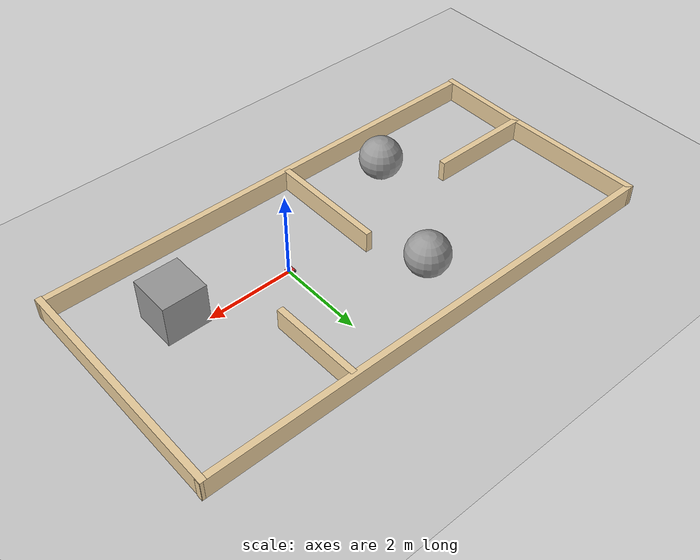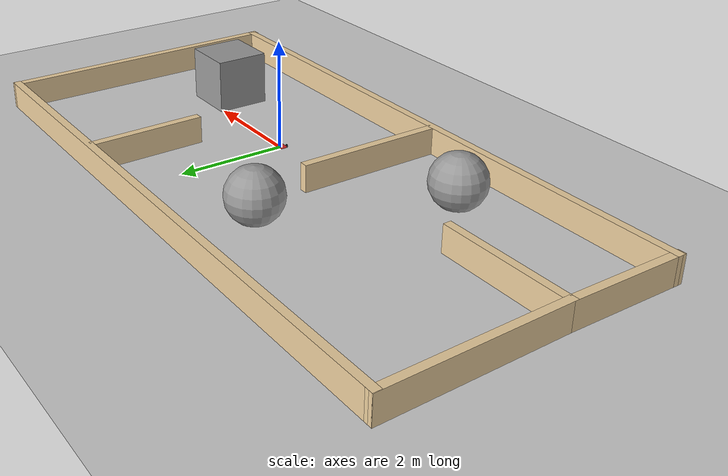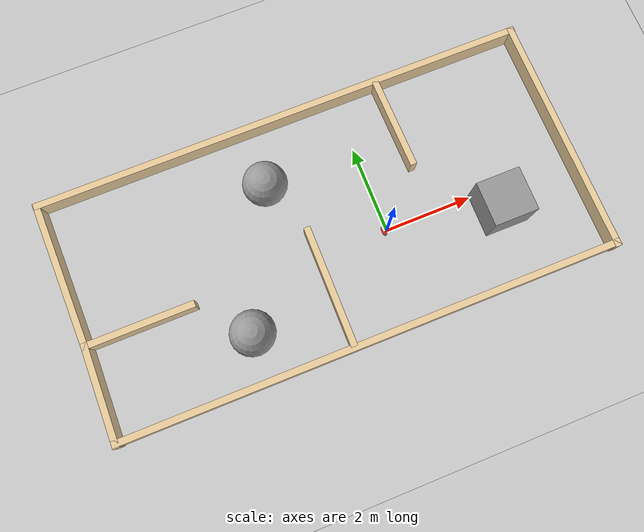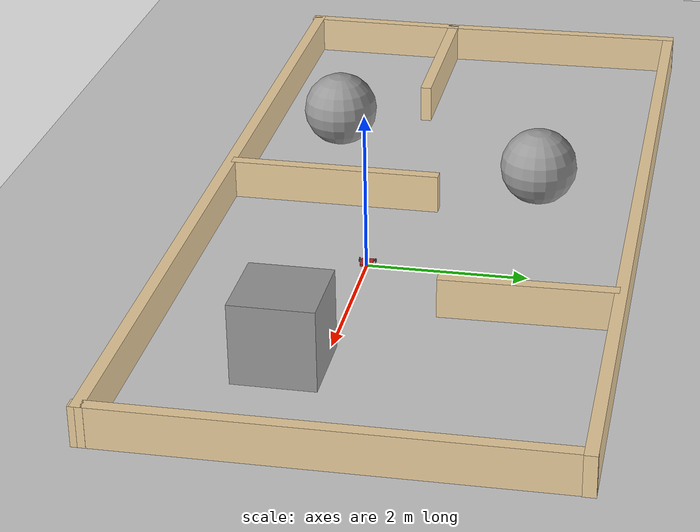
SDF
<sdf version="1.7">
 <world name="default">
  <light name="sun" type="directional">
   <pose>0 0 10 0 -0 0</pose>
   <diffuse>0.8 0.8 0.8 1</diffuse>
   <specular>0.2 0.2 0.2 1</specular>
   <attenuation>
    <range>1000</range>
    <constant>0.9</constant>
    <linear>0.01</linear>
    <quadratic>0.001</quadratic>
   </attenuation>
   <direction>-0.5 0.1 -0.9</direction>
   <spot><inner_angle>0</inner_angle><outer_angle>0</outer_angle><falloff>0</falloff></spot>
  </light>
  <model name="ground_plane">
   <static>1</static>
   <link name="link">
    <collision name="collision">
     <geometry><plane><normal>0 0 1</normal><size>100 100</size></plane></geometry>
     <surface>
      <contact><collide_bitmask>65535</collide_bitmask></contact>
      <friction><ode><mu>100</mu><mu2>50</mu2></ode></friction>
     </surface>
    </collision>
    <visual name="visual">
     <cast_shadows>0</cast_shadows>
     <geometry><plane><normal>0 0 1</normal><size>100 100</size></plane></geometry>
     <material>
      <script><uri>file://media/materials/scripts/gazebo.material</uri><name>Gazebo/Grey</name></script>
     </material>
    </visual>
   </link>
  </model>
  <gravity>0 0 -9.8</gravity>
  <magnetic_field>6e-06 2.3e-05 -4.2e-05</magnetic_field>
  <atmosphere type="adiabatic"/>
  <physics type="ode">
   <max_step_size>0.001</max_step_size>
   <real_time_factor>1</real_time_factor>
   <real_time_update_rate>1000</real_time_update_rate>
  </physics>
  <scene><ambient>0.4 0.4 0.4 1</ambient><background>0.7 0.7 0.7 1</background><shadows>1</shadows></scene>
  <spherical_coordinates>
   <surface_model>EARTH_WGS84</surface_model>
   <latitude_deg>0</latitude_deg>
   <longitude_deg>0</longitude_deg>
   <elevation>0</elevation>
   <heading_deg>0</heading_deg>
  </spherical_coordinates>
  <model name="world_4">
   <pose>-1.26957 0.52011 0 0 -0 0</pose>
   <link name="Wall_0">
    <collision name="Wall_0_Collision">
     <geometry><box><size>11.5 0.15 0.5</size></box></geometry>
     <pose>0 0 0.25 0 -0 0</pose>
    </collision>
    <visual name="Wall_0_Visual">
     <pose>0 0 0.25 0 -0 0</pose>
     <geometry><box><size>11.5 0.15 0.5</size></box></geometry>
     <material>
      <script><uri>file://media/materials/scripts/gazebo.material</uri><name>Gazebo/Grey</name></script>
      <ambient>0.921569 0.807843 0.615686 1</ambient>
     </material>
     <meta><layer>0</layer></meta>
    </visual>
    <pose>-0.009596 2.69462 0 0 -0 -0.000881</pose>
   </link>
   <link name="Wall_1">
    <collision name="Wall_1_Collision">
     <geometry><box><size>5.54008 0.15 0.5</size></box></geometry>
     <pose>0 0 0.25 0 -0 0</pose>
    </collision>
    <visual name="Wall_1_Visual">
     <pose>0 0 0.25 0 -0 0</pose>
     <geometry><box><size>5.54008 0.15 0.5</size></box></geometry>
     <material>
      <script><uri>file://media/materials/scripts/gazebo.material</uri><name>Gazebo/Grey</name></script>
      <ambient>0.921569 0.807843 0.615686 1</ambient>
     </material>
     <meta><layer>0</layer></meta>
    </visual>
    <pose>5.6754 -0.005379 0 0 -0 -1.56337</pose>
   </link>
   <link name="Wall_13">
    <collision name="Wall_13_Collision">
     <geometry><box><size>2.75 0.15 0.5</size></box></geometry>
     <pose>0 0 0.25 0 -0 0</pose>
    </collision>
    <visual name="Wall_13_Visual">
     <pose>0 0 0.25 0 -0 0</pose>
     <geometry><box><size>2.75 0.15 0.5</size></box></geometry>
     <material>
      <script><uri>file://media/materials/scripts/gazebo.material</uri><name>Gazebo/Grey</name></script>
      <ambient>0.921569 0.807843 0.615686 1</ambient>
     </material>
     <meta><layer>0</layer></meta>
    </visual>
    <pose>-0.394596 -1.28038 0 0 -0 1.5708</pose>
   </link>
   <link name="Wall_2">
    <collision name="Wall_2_Collision">
     <geometry><box><size>11.5 0.15 0.5</size></box></geometry>
     <pose>0 0 0.25 0 -0 0</pose>
    </collision>
    <visual name="Wall_2_Visual">
     <pose>0 0 0.25 0 -0 0</pose>
     <geometry><box><size>11.5 0.15 0.5</size></box></geometry>
     <material>
      <script><uri>file://media/materials/scripts/gazebo.material</uri><name>Gazebo/Grey</name></script>
      <ambient>0.921569 0.807843 0.615686 1</ambient>
     </material>
     <meta><layer>0</layer></meta>
    </visual>
    <pose>0.020404 -2.67538 0 0 -0 3.14071</pose>
   </link>
   <link name="Wall_3">
    <collision name="Wall_3_Collision">
     <geometry><box><size>2.27002 0.15 0.5</size></box></geometry>
     <pose>0 0 0.25 0 -0 0</pose>
    </collision>
    <visual name="Wall_3_Visual">
     <pose>0 0 0.25 0 -0 0</pose>
     <geometry><box><size>2.27002 0.15 0.5</size></box></geometry>
     <material>
      <script><uri>file://media/materials/scripts/gazebo.material</uri><name>Gazebo/Grey</name></script>
      <ambient>0.921569 0.807843 0.615686 1</ambient>
     </material>
     <meta><layer>0</layer></meta>
    </visual>
    <pose>-5.6446 -1.63038 0 0 -0 1.56136</pose>
   </link>
   <link name="Wall_4">
    <collision name="Wall_4_Collision">
     <geometry><box><size>2.52 0.15 0.5</size></box></geometry>
     <pose>0 0 0.25 0 -0 0</pose>
    </collision>
    <visual name="Wall_4_Visual">
     <pose>0 0 0.25 0 -0 0</pose>
     <geometry><box><size>2.52 0.15 0.5</size></box></geometry>
     <material>
      <script><uri>file://media/materials/scripts/gazebo.material</uri><name>Gazebo/Grey</name></script>
      <ambient>0.921569 0.807843 0.615686 1</ambient>
     </material>
     <meta><layer>0</layer></meta>
    </visual>
    <pose>-4.4496 -0.570379 0 0 -0 0</pose>
   </link>
   <link name="Wall_6">
    <collision name="Wall_6_Collision">
     <geometry><box><size>3.42038 0.15 0.5</size></box></geometry>
     <pose>0 0 0.25 0 -0 0</pose>
    </collision>
    <visual name="Wall_6_Visual">
     <pose>0 0 0.25 0 -0 0</pose>
     <geometry><box><size>3.42038 0.15 0.5</size></box></geometry>
     <material>
      <script><uri>file://media/materials/scripts/gazebo.material</uri><name>Gazebo/Grey</name></script>
      <ambient>0.921569 0.807843 0.615686 1</ambient>
     </material>
     <meta><layer>0</layer></meta>
    </visual>
    <pose>-5.6646 1.06462 0 0 -0 -1.55245</pose>
   </link>
   <link name="Wall_8">
    <collision name="Wall_8_Collision">
     <geometry><box><size>2.1304 0.15 0.5</size></box></geometry>
     <pose>0 0 0.25 0 -0 0</pose>
    </collision>
    <visual name="Wall_8_Visual">
     <pose>0 0 0.25 0 -0 0</pose>
     <geometry><box><size>2.1304 0.15 0.5</size></box></geometry>
     <material>
      <script><uri>file://media/materials/scripts/gazebo.material</uri><name>Gazebo/Grey</name></script>
      <ambient>0.921569 0.807843 0.615686 1</ambient>
     </material>
     <meta><layer>0</layer></meta>
    </visual>
    <pose>2.2954 1.60962 0 0 -0 -1.5506</pose>
   </link>
   <static>1</static>
  </model>
  <model name="unit_box">
   <pose>2.49492 -0.439017 0.499995 0 1e-05 0</pose>
   <link name="link">
    <inertial>
     <mass>1</mass>
     <inertia>
      <ixx>0.166667</ixx>
      <ixy>0</ixy>
      <ixz>0</ixz>
      <iyy>0.166667</iyy>
      <iyz>0</iyz>
      <izz>0.166667</izz>
     </inertia>
    </inertial>
    <collision name="collision"><geometry><box><size>1 1 1</size></box></geometry></collision>
    <visual name="visual">
     <geometry><box><size>1 1 1</size></box></geometry>
     <material>
      <script><name>Gazebo/Grey</name><uri>file://media/materials/scripts/gazebo.material</uri></script>
     </material>
    </visual>
   </link>
  </model>
  <model name="unit_sphere">
   <pose>-3.54273 -1.08671 0.5 0 -0 0</pose>
   <link name="link">
    <inertial>
     <mass>1</mass>
     <inertia><ixx>0.1</ixx><ixy>0</ixy><ixz>0</ixz><iyy>0.1</iyy><iyz>0</iyz><izz>0.1</izz></inertia>
    </inertial>
    <collision name="collision"><geometry><sphere><radius>0.5</radius></sphere></geometry></collision>
    <visual name="visual">
     <geometry><sphere><radius>0.5</radius></sphere></geometry>
     <material>
      <script><name>Gazebo/Grey</name><uri>file://media/materials/scripts/gazebo.material</uri></script>
     </material>
    </visual>
   </link>
  </model>
  <model name="rmp01_bot">
   <link name="base_link">
    <inertial>
     <pose>0.010759 -0 0.042322 0 -0 0</pose>
     <mass>1.2621</mass>
     <inertia>
      <ixx>0.00214581</ixx>
      <ixy>8.33378e-21</ixy>
      <ixz>0.000329519</ixz>
      <iyy>0.00378525</iyy>
      <iyz>-3.97237e-21</iyz>
      <izz>0.00468344</izz>
     </inertia>
    </inertial>
    <collision name="base_link_collision">
     <geometry>
      <mesh>
       <scale>0.001 0.001 0.001</scale>
       <uri>/home/kanish/catkin_ws/src/rmp01_bot_description/meshes/base_link.stl</uri>
      </mesh>
     </geometry>
     <surface><friction><ode><mu>0.2</mu><mu2>0.2</mu2></ode></friction></surface>
    </collision>
    <collision name="base_link_fixed_joint_lump__caster_1_collision_1">
     <geometry>
      <mesh>
       <scale>0.001 0.001 0.001</scale>
       <uri>/home/kanish/catkin_ws/src/rmp01_bot_description/meshes/caster_1.stl</uri>
      </mesh>
     </geometry>
     <surface><friction><ode><mu>0.2</mu><mu2>0.2</mu2></ode></friction></surface>
    </collision>
    <collision name="base_link_fixed_joint_lump__lidar_1_collision_2">
     <geometry>
      <mesh>
       <scale>0.001 0.001 0.001</scale>
       <uri>/home/kanish/catkin_ws/src/rmp01_bot_description/meshes/lidar_1.stl</uri>
      </mesh>
     </geometry>
     <surface><friction><ode><mu>0.2</mu><mu2>0.2</mu2></ode></friction></surface>
    </collision>
    <visual name="base_link_visual">
     <geometry>
      <mesh>
       <scale>0.001 0.001 0.001</scale>
       <uri>/home/kanish/catkin_ws/src/rmp01_bot_description/meshes/base_link.stl</uri>
      </mesh>
     </geometry>
     <material>
      <script><name>Gazebo/Red</name><uri>file://media/materials/scripts/gazebo.material</uri></script>
     </material>
    </visual>
    <visual name="base_link_fixed_joint_lump__caster_1_visual_1">
     <geometry>
      <mesh>
       <scale>0.001 0.001 0.001</scale>
       <uri>/home/kanish/catkin_ws/src/rmp01_bot_description/meshes/caster_1.stl</uri>
      </mesh>
     </geometry>
     <material>
      <script><name>Gazebo/Red</name><uri>file://media/materials/scripts/gazebo.material</uri></script>
     </material>
    </visual>
    <visual name="base_link_fixed_joint_lump__lidar_1_visual_2">
     <geometry>
      <mesh>
       <scale>0.001 0.001 0.001</scale>
       <uri>/home/kanish/catkin_ws/src/rmp01_bot_description/meshes/lidar_1.stl</uri>
      </mesh>
     </geometry>
     <material>
      <script><name>Gazebo/Red</name><uri>file://media/materials/scripts/gazebo.material</uri></script>
     </material>
    </visual>
    <sensor name="camera1" type="camera">
     <update_rate>30</update_rate>
     <camera name="head">
      <horizontal_fov>1.39626</horizontal_fov>
      <image><width>800</width><height>800</height><format>R8G8B8</format></image>
      <clip><near>0.02</near><far>300</far></clip>
      <noise><type>gaussian</type><mean>0</mean><stddev>0.007</stddev></noise>
     </camera>
     <plugin name="camera_controller" filename="libgazebo_ros_camera.so">
      <alwaysOn>1</alwaysOn>
      <updateRate>0.0</updateRate>
      <cameraName>rrbot/camera1</cameraName>
      <imageTopicName>image_raw</imageTopicName>
      <cameraInfoTopicName>camera_info</cameraInfoTopicName>
      <frameName>camera_link</frameName>
      <hackBaseline>0.07</hackBaseline>
      <distortionK1>0.0</distortionK1>
      <distortionK2>0.0</distortionK2>
      <distortionK3>0.0</distortionK3>
      <distortionT1>0.0</distortionT1>
      <distortionT2>0.0</distortionT2>
      <robotNamespace>/</robotNamespace>
     </plugin>
     <pose>0 0 0.1 0 -0 0</pose>
    </sensor>
    <self_collide>1</self_collide>
    <sensor name="head_hokuyo_sensor" type="ray">
     <visualize>0</visualize>
     <update_rate>40</update_rate>
     <ray>
      <scan>
       <horizontal>
        <samples>720</samples>
        <resolution>1</resolution>
        <min_angle>-3.14</min_angle>
        <max_angle>3.14</max_angle>
       </horizontal>
       <vertical><samples>1</samples><min_angle>0</min_angle><max_angle>0</max_angle></vertical>
      </scan>
      <range><min>0.1</min><max>30</max><resolution>0.01</resolution></range>
      <noise><type>gaussian</type><mean>0</mean><stddev>0.01</stddev></noise>
     </ray>
     <plugin name="gazebo_ros_head_hokuyo_controller" filename="libgazebo_ros_laser.so">
      <topicName>/scan</topicName>
      <frameName>lidar_1</frameName>
      <robotNamespace>/</robotNamespace>
     </plugin>
     <pose>0 0 0.0775 0 -0 0</pose>
    </sensor>
   </link>
   <joint name="left_wheel_joint" type="revolute">
    <pose relative_to="base_link">-0.055 0.095 0.035 0 -0 0</pose>
    <parent>base_link</parent>
    <child>left_wheel_1</child>
    <axis>
     <xyz>0 1 0</xyz>
     <limit><lower>-1e+16</lower><upper>1e+16</upper></limit>
     <dynamics><spring_reference>0</spring_reference><spring_stiffness>0</spring_stiffness></dynamics>
    </axis>
   </joint>
   <link name="left_wheel_1">
    <pose relative_to="left_wheel_joint">0 0 0 0 -0 0</pose>
    <inertial>
     <pose>-0 0.005 0 0 -0 0</pose>
     <mass>0.0255647</mass>
     <inertia><ixx>6e-06</ixx><ixy>0</ixy><ixz>0</ixz><iyy>1.2e-05</iyy><iyz>0</iyz><izz>6e-06</izz></inertia>
    </inertial>
    <collision name="left_wheel_1_collision">
     <pose>0.055 -0.095 -0.035 0 -0 0</pose>
     <geometry>
      <mesh>
       <scale>0.001 0.001 0.001</scale>
       <uri>/home/kanish/catkin_ws/src/rmp01_bot_description/meshes/left_wheel_1.stl</uri>
      </mesh>
     </geometry>
     <surface><friction><ode><mu>10</mu><mu2>10</mu2></ode></friction></surface>
    </collision>
    <visual name="left_wheel_1_visual">
     <pose>0.055 -0.095 -0.035 0 -0 0</pose>
     <geometry>
      <mesh>
       <scale>0.001 0.001 0.001</scale>
       <uri>/home/kanish/catkin_ws/src/rmp01_bot_description/meshes/left_wheel_1.stl</uri>
      </mesh>
     </geometry>
     <material>
      <script><name>Gazebo/Black</name><uri>file://media/materials/scripts/gazebo.material</uri></script>
     </material>
    </visual>
    <self_collide>1</self_collide>
   </link>
   <joint name="right_wheel_joint" type="revolute">
    <pose relative_to="base_link">-0.055 -0.095 0.035 0 -0 0</pose>
    <parent>base_link</parent>
    <child>right_wheel_1</child>
    <axis>
     <xyz>0 1 0</xyz>
     <limit><lower>-1e+16</lower><upper>1e+16</upper></limit>
     <dynamics><spring_reference>0</spring_reference><spring_stiffness>0</spring_stiffness></dynamics>
    </axis>
   </joint>
   <link name="right_wheel_1">
    <pose relative_to="right_wheel_joint">0 0 0 0 -0 0</pose>
    <inertial>
     <pose>-0 -0.005 0 0 -0 0</pose>
     <mass>0.0255647</mass>
     <inertia><ixx>6e-06</ixx><ixy>0</ixy><ixz>0</ixz><iyy>1.2e-05</iyy><iyz>0</iyz><izz>6e-06</izz></inertia>
    </inertial>
    <collision name="right_wheel_1_collision">
     <pose>0.055 0.095 -0.035 0 -0 0</pose>
     <geometry>
      <mesh>
       <scale>0.001 0.001 0.001</scale>
       <uri>/home/kanish/catkin_ws/src/rmp01_bot_description/meshes/right_wheel_1.stl</uri>
      </mesh>
     </geometry>
     <surface><friction><ode><mu>10</mu><mu2>10</mu2></ode></friction></surface>
    </collision>
    <visual name="right_wheel_1_visual">
     <pose>0.055 0.095 -0.035 0 -0 0</pose>
     <geometry>
      <mesh>
       <scale>0.001 0.001 0.001</scale>
       <uri>/home/kanish/catkin_ws/src/rmp01_bot_description/meshes/right_wheel_1.stl</uri>
      </mesh>
     </geometry>
     <material>
      <script><name>Gazebo/Black</name><uri>file://media/materials/scripts/gazebo.material</uri></script>
     </material>
    </visual>
    <self_collide>1</self_collide>
   </link>
   <plugin name="control" filename="libgazebo_ros_control.so"><robotNamespace>/</robotNamespace></plugin>
   <static>0</static>
   <plugin name="differential_drive_controller" filename="libgazebo_ros_diff_drive.so">
    <updateRate>10</updateRate>
    <leftJoint>left_wheel_joint</leftJoint>
    <rightJoint>right_wheel_joint</rightJoint>
    <wheelSeparation>0.20</wheelSeparation>
    <wheelDiameter>0.59</wheelDiameter>
    <wheelAcceleration>1.0</wheelAcceleration>
    <wheelTorque>20</wheelTorque>
    <commandTopic>cmd_vel</commandTopic>
    <odometryTopic>odom</odometryTopic>
    <odometryFrame>odom</odometryFrame>
    <robotBaseFrame>base_link</robotBaseFrame>
    <odometrySource>1</odometrySource>
    <publishWheelTF>1</publishWheelTF>
    <publishOdom>1</publishOdom>
    <publishWheelJointState>1</publishWheelJointState>
    <legacyMode>0</legacyMode>
    <robotNamespace>/</robotNamespace>
   </plugin>
   <pose>-0.021227 -0.000473 -0.005003 5.8e-05 -5.2e-05 0.008392</pose>
  </model>
  <model name="unit_sphere_0">
   <pose>-2.15835 1.85541 0.5 0 -0 0</pose>
   <link name="link">
    <inertial>
     <mass>1</mass>
     <inertia><ixx>0.1</ixx><ixy>0</ixy><ixz>0</ixz><iyy>0.1</iyy><iyz>0</iyz><izz>0.1</izz></inertia>
    </inertial>
    <collision name="collision"><geometry><sphere><radius>0.5</radius></sphere></geometry></collision>
    <visual name="visual">
     <geometry><sphere><radius>0.5</radius></sphere></geometry>
     <material>
      <script><name>Gazebo/Grey</name><uri>file://media/materials/scripts/gazebo.material</uri></script>
     </material>
    </visual>
   </link>
  </model>
 </world>
</sdf>
